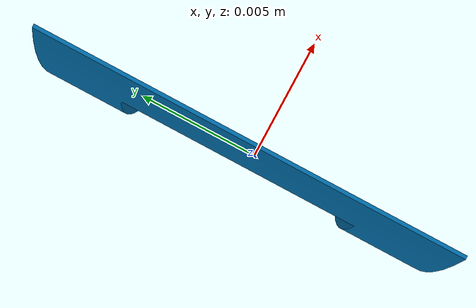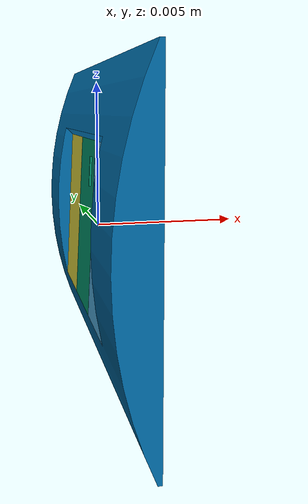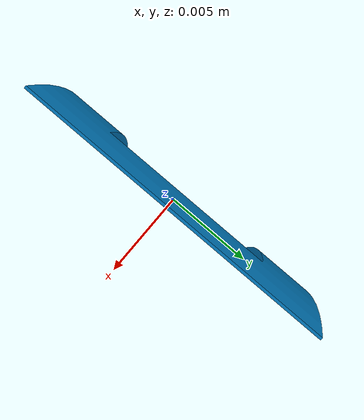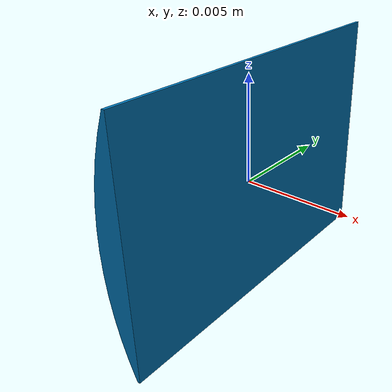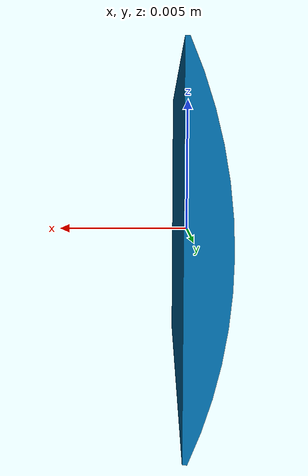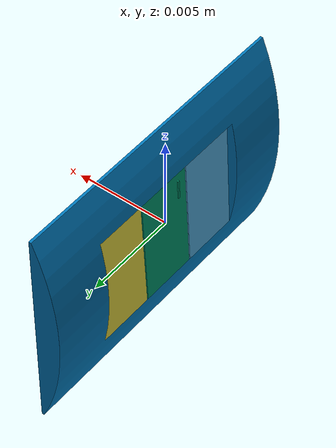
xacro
<robot name="partnet_ba4e562c7254a4352042b535f7e0616d" xmlns:xacro="http://wiki.ros.org/xacro">
	<xacro:property name="scale" value="100" /><link name="base" />
	<link name="link_0">
		<visual name="switch-1">
			<origin xyz="${0 / scale} ${-0.001455999999999985 / scale} ${-0.032494 / scale}" />
			<geometry>
				<mesh filename="package://switch_description/urdf/100935/textured_objs/original-2.obj" scale="${1 / scale} ${1 / scale} ${1 / scale}" />
			</geometry>
		</visual>
		<collision>
			<origin xyz="${0 / scale} ${-0.001455999999999985 / scale} ${-0.032494 / scale}" />
			<geometry>
				<mesh filename="package://switch_description/urdf/100935/textured_objs/original-2.obj" scale="${1 / scale} ${1 / scale} ${1 / scale}" />
			</geometry>
		</collision>
	</link>
	<joint name="joint_0" type="revolute">
		<origin xyz="${0 / scale} ${0.001455999999999985 / scale} ${0.032494 / scale}" />
		<axis xyz="1 0 0" />
		<child link="link_0" />
		<parent link="link_3" />
		<limit lower="0.0" upper="0.15707963267948966" effort="10.0" velocity="0.1" />
	</joint>
	<link name="link_1">
		<visual name="switch-2">
			<origin xyz="${0 / scale} ${-0.001455999999999985 / scale} ${-0.032494 / scale}" />
			<geometry>
				<mesh filename="package://switch_description/urdf/100935/textured_objs/original-7.obj" scale="${1 / scale} ${1 / scale} ${1 / scale}" />
			</geometry>
		</visual>
		<visual name="switch-2">
			<origin xyz="${0 / scale} ${-0.001455999999999985 / scale} ${-0.032494 / scale}" />
			<geometry>
				<mesh filename="package://switch_description/urdf/100935/textured_objs/original-6.obj" scale="${1 / scale} ${1 / scale} ${1 / scale}" />
			</geometry>
		</visual>
		<collision>
			<origin xyz="${0 / scale} ${-0.001455999999999985 / scale} ${-0.032494 / scale}" />
			<geometry>
				<mesh filename="package://switch_description/urdf/100935/textured_objs/original-7.obj" scale="${1 / scale} ${1 / scale} ${1 / scale}" />
			</geometry>
		</collision>
		<collision>
			<origin xyz="${0 / scale} ${-0.001455999999999985 / scale} ${-0.032494 / scale}" />
			<geometry>
				<mesh filename="package://switch_description/urdf/100935/textured_objs/original-6.obj" scale="${1 / scale} ${1 / scale} ${1 / scale}" />
			</geometry>
		</collision>
	</link>
	<joint name="joint_1" type="revolute">
		<origin xyz="${0 / scale} ${0.001455999999999985 / scale} ${0.032494 / scale}" />
		<axis xyz="1 0 0" />
		<child link="link_1" />
		<parent link="link_3" />
		<limit lower="0.0" upper="0.15707963267948966" effort="10.0" velocity="0.1" />
	</joint>
	<link name="link_2">
		<visual name="switch-3">
			<origin xyz="${0 / scale} ${-0.001455999999999985 / scale} ${-0.032494 / scale}" />
			<geometry>
				<mesh filename="package://switch_description/urdf/100935/textured_objs/original-3.obj" scale="${1 / scale} ${1 / scale} ${1 / scale}" />
			</geometry>
		</visual>
		<collision>
			<origin xyz="${0 / scale} ${-0.001455999999999985 / scale} ${-0.032494 / scale}" />
			<geometry>
				<mesh filename="package://switch_description/urdf/100935/textured_objs/original-3.obj" scale="${1 / scale} ${1 / scale} ${1 / scale}" />
			</geometry>
		</collision>
	</link>
	<joint name="joint_2" type="revolute">
		<origin xyz="${0 / scale} ${0.001455999999999985 / scale} ${0.032494 / scale}" />
		<axis xyz="1 0 0" />
		<child link="link_2" />
		<parent link="link_3" />
		<limit lower="0.0" upper="0.15707963267948966" effort="10.0" velocity="0.1" />
	</joint>
	<link name="link_3">
		<visual name="base_body-4">
			<origin xyz="${0 / scale} ${0 / scale} ${0 / scale}" />
			<geometry>
				<mesh filename="package://switch_description/urdf/100935/textured_objs/original-8.obj" scale="${1 / scale} ${1 / scale} ${1 / scale}" />
			</geometry>
		</visual>
		<visual name="base_body-4">
			<origin xyz="${0 / scale} ${0 / scale} ${0 / scale}" />
			<geometry>
				<mesh filename="package://switch_description/urdf/100935/textured_objs/original-5.obj" scale="${1 / scale} ${1 / scale} ${1 / scale}" />
			</geometry>
		</visual>
		<collision>
			<origin xyz="${0 / scale} ${0 / scale} ${0 / scale}" />
			<geometry>
				<mesh filename="package://switch_description/urdf/100935/textured_objs/original-8.obj" scale="${1 / scale} ${1 / scale} ${1 / scale}" />
			</geometry>
		</collision>
		<collision>
			<origin xyz="${0 / scale} ${0 / scale} ${0 / scale}" />
			<geometry>
				<mesh filename="package://switch_description/urdf/100935/textured_objs/original-5.obj" scale="${1 / scale} ${1 / scale} ${1 / scale}" />
			</geometry>
		</collision>
	</link>
	<joint name="joint_3" type="fixed">
		<origin rpy="1.570796326794897 0 -1.570796326794897" xyz="${0 / scale} ${0 / scale} ${0 / scale}" />
		<child link="link_3" />
		<parent link="base" />
	</joint>
</robot>
